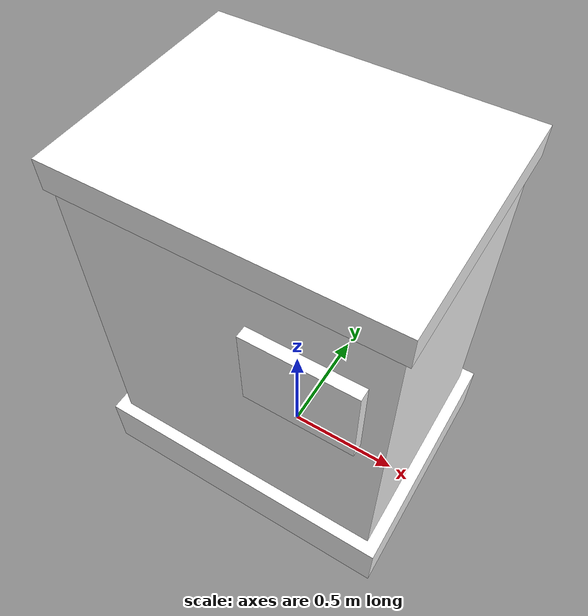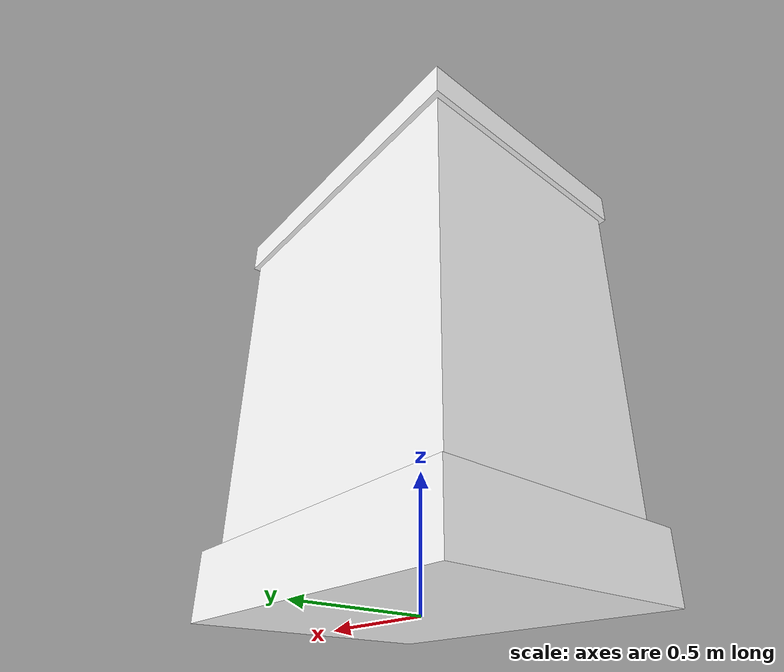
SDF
<?xml version="1.0"?>
<sdf version="1.10">
  <model name="machine_cnc">
    <static>true</static>
      <link name="body">
        <collision name="base_col"><pose>0 0 0.125 0 0 0</pose>
          <geometry><box><size>1.30 1.00 0.25</size></box></geometry></collision>
        <visual name="base_vis"><pose>0 0 0.125 0 0 0</pose>
          <geometry><box><size>1.30 1.00 0.25</size></box></geometry>
          <material>
          <diffuse>1 1 1 1</diffuse>
          <specular>0.15 0.15 0.15 1</specular>
          <pbr><metal>
            <albedo_map>model://slam_assets/materials/textures/metal_panel.png</albedo_map>
            <roughness>0.85</roughness><metalness>0.0</metalness>
          </metal></pbr>
        </material>
        </visual>
        <collision name="body_col"><pose>0 0 0.90 0 0 0</pose>
          <geometry><box><size>1.20 0.90 1.30</size></box></geometry></collision>
        <visual name="body_vis"><pose>0 0 0.90 0 0 0</pose>
          <geometry><box><size>1.20 0.90 1.30</size></box></geometry>
          <material>
          <diffuse>1 1 1 1</diffuse>
          <specular>0.15 0.15 0.15 1</specular>
          <pbr><metal>
            <albedo_map>model://slam_assets/materials/textures/machine_skin.png</albedo_map>
            <roughness>0.85</roughness><metalness>0.0</metalness>
          </metal></pbr>
        </material>
        </visual>
        <collision name="hood_col"><pose>0 0 1.60 0 0 0</pose>
          <geometry><box><size>1.24 0.94 0.12</size></box></geometry></collision>
        <visual name="hood_vis"><pose>0 0 1.60 0 0 0</pose>
          <geometry><box><size>1.24 0.94 0.12</size></box></geometry>
          <material>
          <diffuse>1 1 1 1</diffuse>
          <specular>0.15 0.15 0.15 1</specular>
          <pbr><metal>
            <albedo_map>model://slam_assets/materials/textures/metal_brushed.png</albedo_map>
            <roughness>0.85</roughness><metalness>0.0</metalness>
          </metal></pbr>
        </material>
        </visual>
        <visual name="screen_vis"><pose>0.30 -0.47 1.15 0 0 0</pose>
          <geometry><box><size>0.42 0.05 0.34</size></box></geometry>
          <material>
          <diffuse>1 1 1 1</diffuse>
          <specular>0.15 0.15 0.15 1</specular>
          <pbr><metal>
            <albedo_map>model://slam_assets/materials/textures/control_face.png</albedo_map>
            <roughness>0.85</roughness><metalness>0.0</metalness>
          </metal></pbr>
        </material>
        </visual>
      </link>
  </model>
</sdf>
